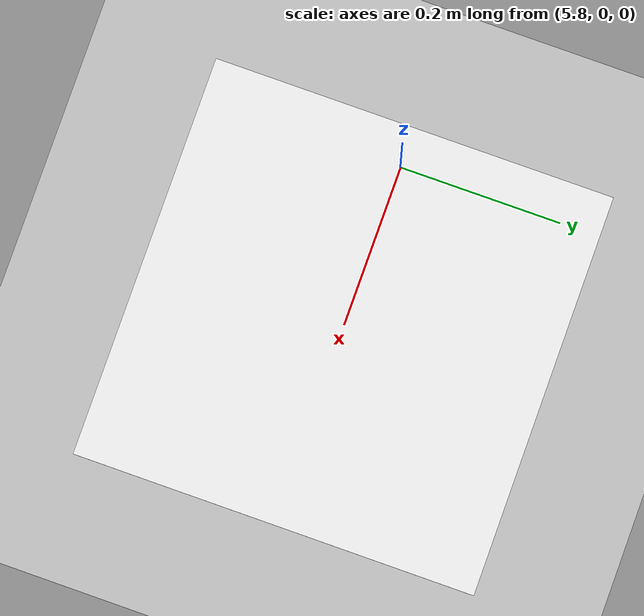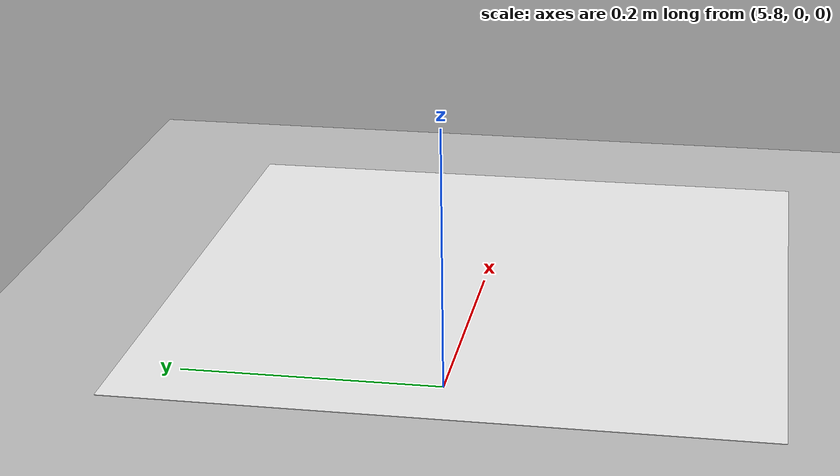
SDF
<?xml version="1.0" encoding="UTF-8"?>
<sdf version="1.9">
  <world name="random_aruco">

    <physics type="ode">
      <max_step_size>0.004</max_step_size>
      <real_time_factor>1.0</real_time_factor>
      <real_time_update_rate>250</real_time_update_rate>
    </physics>
    <gravity>0 0 -9.8</gravity>
    <magnetic_field>6e-06 2.3e-05 -4.2e-05</magnetic_field>
    <atmosphere type="adiabatic"/>

    <scene>
      <grid>false</grid>
      <ambient>0.4 0.4 0.4 1</ambient>
      <background>0.7 0.7 0.7 1</background>
      <shadows>true</shadows>
    </scene>

    <model name="ground_plane">
      <static>true</static>
      <link name="link">
        <collision name="collision">
          <geometry>
            <plane><normal>0 0 1</normal><size>1 1</size></plane>
          </geometry>
          <surface><friction><ode/></friction><bounce/><contact/></surface>
        </collision>
        <visual name="visual">
          <geometry>
            <plane><normal>0 0 1</normal><size>100 100</size></plane>
          </geometry>
          <material>
            <ambient>0.8 0.8 0.8 1</ambient>
            <diffuse>0.8 0.8 0.8 1</diffuse>
            <specular>0.8 0.8 0.8 1</specular>
          </material>
        </visual>
        <pose>0 0 0 0 0 0</pose>
      </link>
      <pose>0 0 -0.01 0 0 0</pose>
      <self_collide>false</self_collide>
    </model>

    <light name="sunUTC" type="directional">
      <pose>0 0 500 0 0 0</pose>
      <cast_shadows>true</cast_shadows>
      <intensity>1</intensity>
      <direction>0.001 0.625 -0.78</direction>
      <diffuse>0.904 0.904 0.904 1</diffuse>
      <specular>0.271 0.271 0.271 1</specular>
      <attenuation>
        <range>2000</range><linear>0</linear>
        <constant>1</constant><quadratic>0</quadratic>
      </attenuation>
      <spot><inner_angle>0</inner_angle><outer_angle>0</outer_angle><falloff>0</falloff></spot>
    </light>

    <spherical_coordinates>
      <surface_model>EARTH_WGS84</surface_model>
      <world_frame_orientation>ENU</world_frame_orientation>
      <latitude_deg>47.397971057728974</latitude_deg>
      <longitude_deg>8.546163739800146</longitude_deg>
      <elevation>0</elevation>
    </spherical_coordinates>

    <!-- Static reference layout: one ArUco 4x4_50 ID0 marker 6 m north of the drone spawn. -->
    <include>
      <uri>model://aruco_4x4_id0</uri>
      <name>aruco_4x4_id0</name>
      <pose>6 0 0 0 0 0</pose>
    </include>

  </world>
</sdf>

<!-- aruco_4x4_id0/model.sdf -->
<sdf version="1.9">
  <model name="aruco_4x4_id0">
    <static>true</static>
    <pose>0 0 0.01 0 0 0</pose>
    <link name="base">
      <visual name="base_visual">
        <geometry>
          <plane>
            <normal>0 0 1</normal>
            <size>0.5 0.5</size>
          </plane>
        </geometry>
        <material>
          <diffuse>1 1 1 1</diffuse>
          <specular>0.4 0.4 0.4 1</specular>
          <pbr>
            <metal>
              <albedo_map>model://aruco_4x4_id0/marker.png</albedo_map>
            </metal>
          </pbr>
        </material>
      </visual>
    </link>
  </model>
</sdf>
